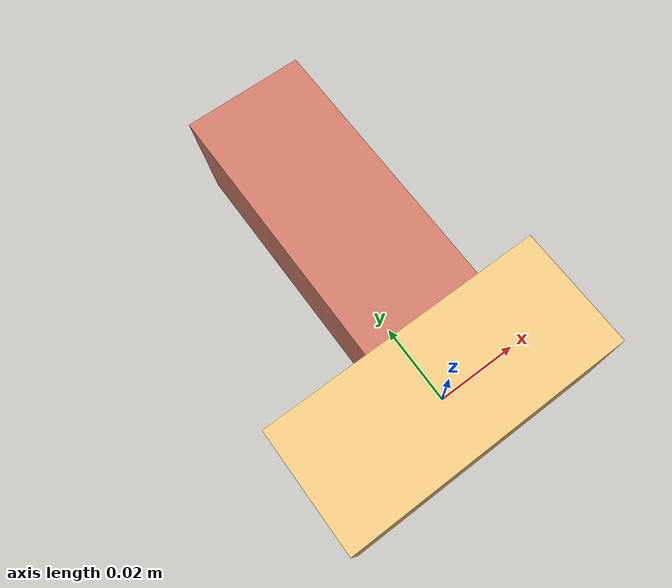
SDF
<sdf version="1.4"><world name="default"><model name="object0"><link name="link1"><pose>0 0 0 0 0 0</pose><inertial><pose>0 0 0 0 0 0</pose><mass>0.0379616050067282</mass><inertia><ixx>5.694240751009229e-06</ixx><ixy>0</ixy><iyy>1.84809340725078e-05</iyy><ixz>0</ixz><iyz>0</iyz><izz>1.84809340725078e-05</izz></inertia></inertial><visual name="link1_visual"><pose>0 0  0 0 0 0</pose><geometry><box><size>0.07029926853097815 0.03 0.03</size></box></geometry><material><diffuse>0.9080954065190601 0.7618004104260215 0.4829302446858266 1</diffuse></material></visual><collision><pose>0 0  0 0 0 0</pose><geometry><box><size>0.07029926853097815 0.03 0.03</size></box></geometry></collision></link><link name="link2"><pose>0.005491701085851376 0.04756422673982943 0 0 0 0</pose><inertial><pose>0 0 0 0 0 0</pose><mass>0.03947300305412584</mass><inertia><ixx>2.034287293686024e-05</ixx><ixy>0</ixy><iyy>5.726874859769424e-06</iyy><ixz>0</ixz><iyz>0</iyz><izz>2.0536948535209692e-05</izz></inertia></inertial><visual name="link2_visual"><pose>0 0  0 0 0 0</pose><geometry><box><size>0.03 0.07309815380393675 0.028999999999999998</size></box></geometry><material><diffuse>0.7904000107067843 0.464697330347772 0.39253774576428063 1</diffuse></material></visual><collision><pose>0 0  0 0 0 0</pose><geometry><box><size>0.03 0.07309815380393675 0.028999999999999998</size></box></geometry></collision></link><joint name="link_joint_0" type="fixed"><parent>link1</parent><child>link2</child><pose>0 0 0 0 0 0</pose><axis><xyz>0 0 1</xyz></axis></joint></model></world></sdf>
